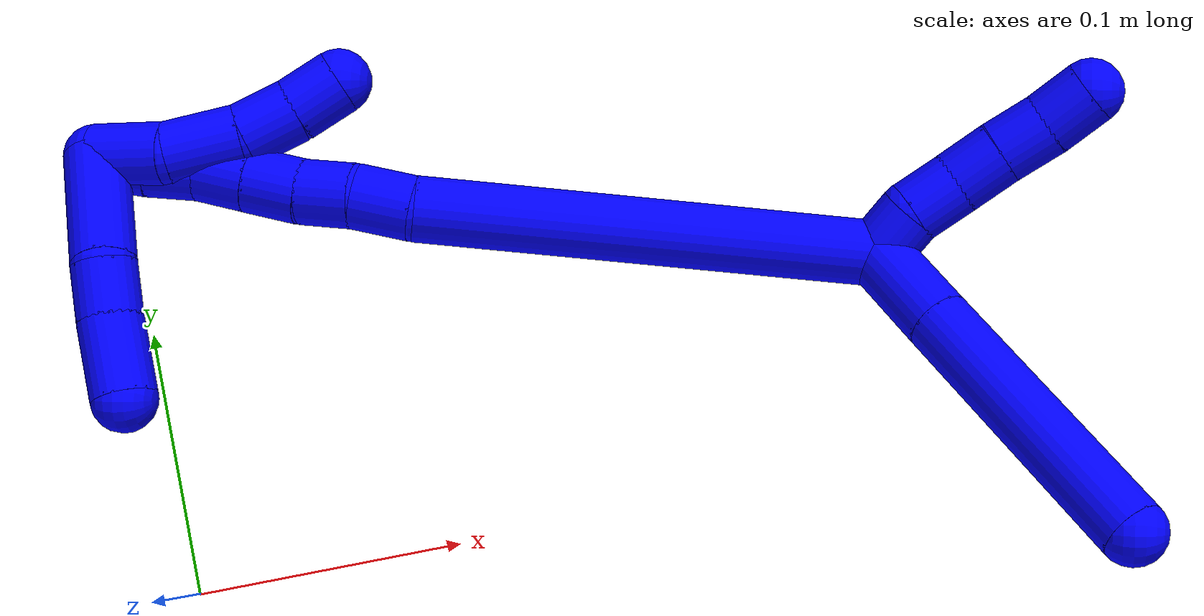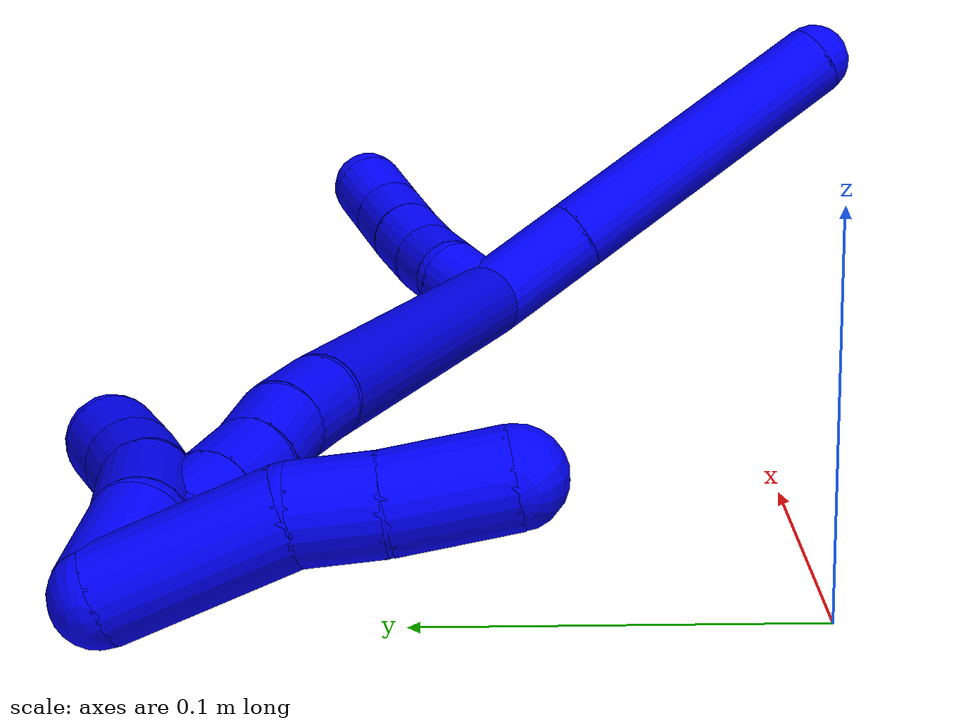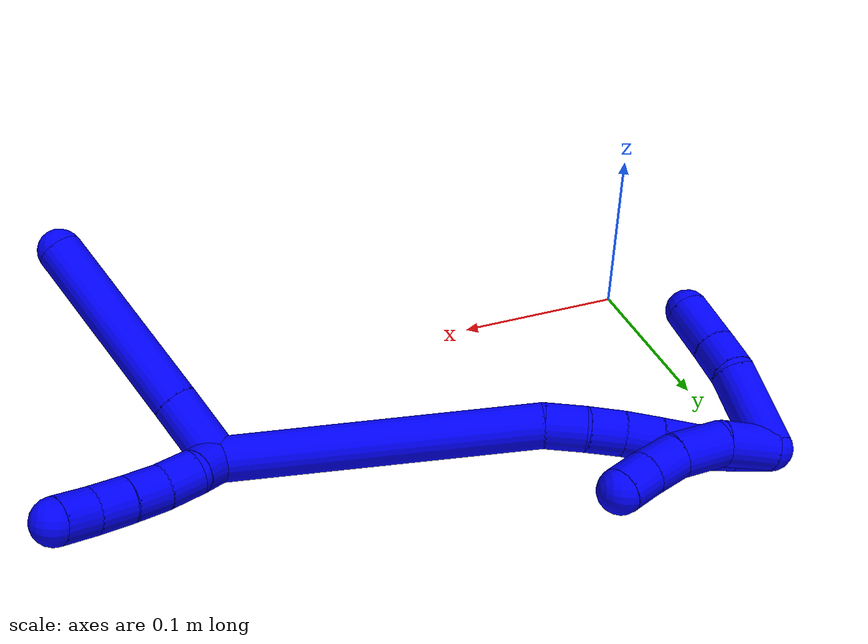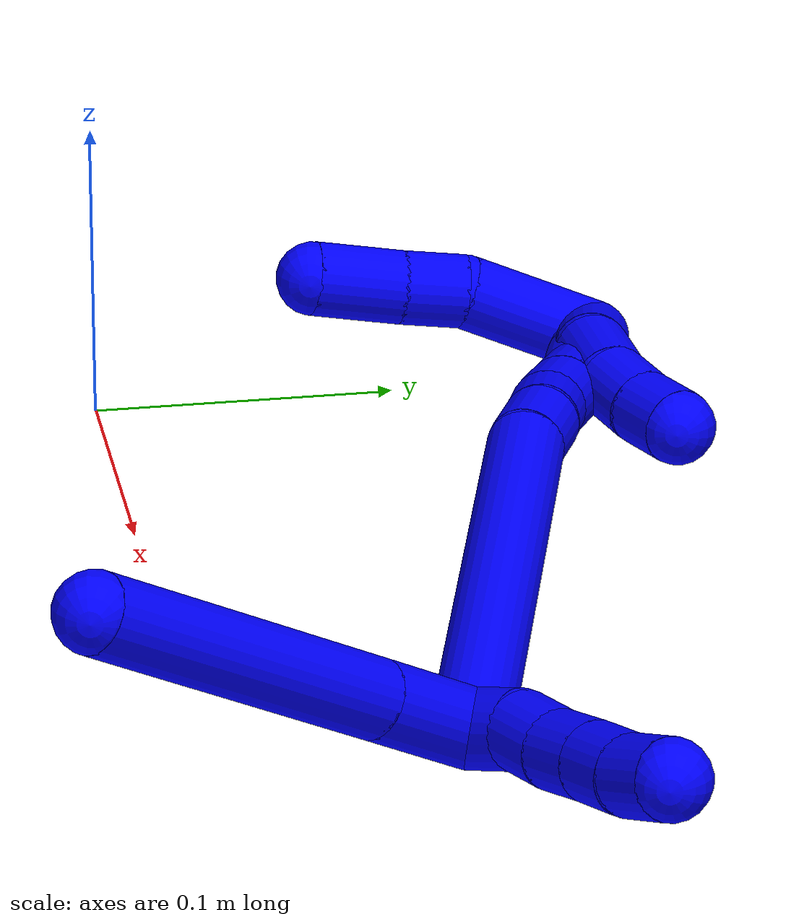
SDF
<sdf version="1.7">
 <world name="default">
  <model name="1">
   <static>0</static>
   <link name="1">
    <collision name="collision-cylinder-e_1_2_8">
     <pose>0.004062 -0.015116 0.012046 0.897941 0.207134 0.100069</pose>
     <geometry><cylinder><radius>0.0125</radius><length>0.039502</length></cylinder></geometry>
     <surface>
      <friction><ode><mu>1.16</mu><mu2>1.16</mu2><slip1>0</slip1><slip2>0</slip2></ode></friction>
      <contact><ode><kp>1e+06</kp><kd>1</kd><max_vel>0</max_vel><min_depth>0.001</min_depth></ode></contact>
     </surface>
    </collision>
    <visual name="visual-cylinder-e_1_2_8">
     <pose>0.004062 -0.015116 0.012046 0.897941 0.207134 0.100069</pose>
     <geometry><cylinder><radius>0.0125</radius><length>0.039502</length></cylinder></geometry>
     <material><ambient>0 0 1 1</ambient></material>
    </visual>
    <collision name="collision-cylinder-e_2_8_6">
     <pose>0.019372 -0.072261 0.058144 0.889868 0.205022 0.098024</pose>
     <geometry><cylinder><radius>0.0125</radius><length>0.110498</length></cylinder></geometry>
     <surface>
      <friction><ode><mu>1.16</mu><mu2>1.16</mu2><slip1>0</slip1><slip2>0</slip2></ode></friction>
      <contact><ode><kp>1e+06</kp><kd>1</kd><max_vel>0</max_vel><min_depth>0.001</min_depth></ode></contact>
     </surface>
    </collision>
    <visual name="visual-cylinder-e_2_8_6">
     <pose>0.019372 -0.072261 0.058144 0.889868 0.205022 0.098024</pose>
     <geometry><cylinder><radius>0.0125</radius><length>0.110498</length></cylinder></geometry>
     <material><ambient>0 0 1 1</ambient></material>
    </visual>
    <collision name="collision-cylinder-e_1_2_9">
     <pose>-0.006732 0.003828 0.006326 -0.544188 -0.738523 0.215131</pose>
     <geometry><cylinder><radius>0.0125</radius><length>0.02</length></cylinder></geometry>
     <surface>
      <friction><ode><mu>1.16</mu><mu2>1.16</mu2><slip1>0</slip1><slip2>0</slip2></ode></friction>
      <contact><ode><kp>1e+06</kp><kd>1</kd><max_vel>0</max_vel><min_depth>0.001</min_depth></ode></contact>
     </surface>
    </collision>
    <visual name="visual-cylinder-e_1_2_9">
     <pose>-0.006732 0.003828 0.006326 -0.544188 -0.738523 0.215131</pose>
     <geometry><cylinder><radius>0.0125</radius><length>0.02</length></cylinder></geometry>
     <material><ambient>0 0 1 1</ambient></material>
    </visual>
    <collision name="collision-cylinder-e_2_9_10">
     <pose>-0.017326 0.011966 0.020809 -0.486059 -0.396526 0.099537</pose>
     <geometry><cylinder><radius>0.0125</radius><length>0.02</length></cylinder></geometry>
     <surface>
      <friction><ode><mu>1.16</mu><mu2>1.16</mu2><slip1>0</slip1><slip2>0</slip2></ode></friction>
      <contact><ode><kp>1e+06</kp><kd>1</kd><max_vel>0</max_vel><min_depth>0.001</min_depth></ode></contact>
     </surface>
    </collision>
    <visual name="visual-cylinder-e_2_9_10">
     <pose>-0.017326 0.011966 0.020809 -0.486059 -0.396526 0.099537</pose>
     <geometry><cylinder><radius>0.0125</radius><length>0.02</length></cylinder></geometry>
     <material><ambient>0 0 1 1</ambient></material>
    </visual>
    <collision name="collision-cylinder-e_3_10_11">
     <pose>-0.025909 0.019639 0.037113 -0.391547 -0.491663 0.099434</pose>
     <geometry><cylinder><radius>0.0125</radius><length>0.02</length></cylinder></geometry>
     <surface>
      <friction><ode><mu>1.16</mu><mu2>1.16</mu2><slip1>0</slip1><slip2>0</slip2></ode></friction>
      <contact><ode><kp>1e+06</kp><kd>1</kd><max_vel>0</max_vel><min_depth>0.001</min_depth></ode></contact>
     </surface>
    </collision>
    <visual name="visual-cylinder-e_3_10_11">
     <pose>-0.025909 0.019639 0.037113 -0.391547 -0.491663 0.099434</pose>
     <geometry><cylinder><radius>0.0125</radius><length>0.02</length></cylinder></geometry>
     <material><ambient>0 0 1 1</ambient></material>
    </visual>
    <collision name="collision-cylinder-e_4_11_12">
     <pose>-0.034953 0.026155 0.05371 -0.357114 -0.446992 0.081997</pose>
     <geometry><cylinder><radius>0.0125</radius><length>0.02</length></cylinder></geometry>
     <surface>
      <friction><ode><mu>1.16</mu><mu2>1.16</mu2><slip1>0</slip1><slip2>0</slip2></ode></friction>
      <contact><ode><kp>1e+06</kp><kd>1</kd><max_vel>0</max_vel><min_depth>0.001</min_depth></ode></contact>
     </surface>
    </collision>
    <visual name="visual-cylinder-e_4_11_12">
     <pose>-0.034953 0.026155 0.05371 -0.357114 -0.446992 0.081997</pose>
     <geometry><cylinder><radius>0.0125</radius><length>0.02</length></cylinder></geometry>
     <material><ambient>0 0 1 1</ambient></material>
    </visual>
    <collision name="collision-cylinder-e_5_12_5">
     <pose>-0.044889 0.031907 0.070015 -0.319512 -0.596033 0.098905</pose>
     <geometry><cylinder><radius>0.0125</radius><length>0.02</length></cylinder></geometry>
     <surface>
      <friction><ode><mu>1.16</mu><mu2>1.16</mu2><slip1>0</slip1><slip2>0</slip2></ode></friction>
      <contact><ode><kp>1e+06</kp><kd>1</kd><max_vel>0</max_vel><min_depth>0.001</min_depth></ode></contact>
     </surface>
    </collision>
    <visual name="visual-cylinder-e_5_12_5">
     <pose>-0.044889 0.031907 0.070015 -0.319512 -0.596033 0.098905</pose>
     <geometry><cylinder><radius>0.0125</radius><length>0.02</length></cylinder></geometry>
     <material><ambient>0 0 1 1</ambient></material>
    </visual>
    <collision name="collision-cylinder-e_1_2_13">
     <pose>-0.017983 -0.011684 -0.084995 3.00498 -0.206609 -1.97499</pose>
     <geometry><cylinder><radius>0.0125</radius><length>0.175318</length></cylinder></geometry>
     <surface>
      <friction><ode><mu>1.16</mu><mu2>1.16</mu2><slip1>0</slip1><slip2>0</slip2></ode></friction>
      <contact><ode><kp>1e+06</kp><kd>1</kd><max_vel>0</max_vel><min_depth>0.001</min_depth></ode></contact>
     </surface>
    </collision>
    <visual name="visual-cylinder-e_1_2_13">
     <pose>-0.017983 -0.011684 -0.084995 3.00498 -0.206609 -1.97499</pose>
     <geometry><cylinder><radius>0.0125</radius><length>0.175318</length></cylinder></geometry>
     <material><ambient>0 0 1 1</ambient></material>
    </visual>
    <collision name="collision-cylinder-e_2_13_14">
     <pose>-0.038239 -0.022722 -0.181036 -3.08314 -0.202713 2.58183</pose>
     <geometry><cylinder><radius>0.0125</radius><length>0.022591</length></cylinder></geometry>
     <surface>
      <friction><ode><mu>1.16</mu><mu2>1.16</mu2><slip1>0</slip1><slip2>0</slip2></ode></friction>
      <contact><ode><kp>1e+06</kp><kd>1</kd><max_vel>0</max_vel><min_depth>0.001</min_depth></ode></contact>
     </surface>
    </collision>
    <visual name="visual-cylinder-e_2_13_14">
     <pose>-0.038239 -0.022722 -0.181036 -3.08314 -0.202713 2.58183</pose>
     <geometry><cylinder><radius>0.0125</radius><length>0.022591</length></cylinder></geometry>
     <material><ambient>0 0 1 1</ambient></material>
    </visual>
    <collision name="collision-cylinder-e_3_14_15">
     <pose>-0.040824 -0.021318 -0.202329 -3.06774 -0.030256 0.777372</pose>
     <geometry><cylinder><radius>0.0125</radius><length>0.020561</length></cylinder></geometry>
     <surface>
      <friction><ode><mu>1.16</mu><mu2>1.16</mu2><slip1>0</slip1><slip2>0</slip2></ode></friction>
      <contact><ode><kp>1e+06</kp><kd>1</kd><max_vel>0</max_vel><min_depth>0.001</min_depth></ode></contact>
     </surface>
    </collision>
    <visual name="visual-cylinder-e_3_14_15">
     <pose>-0.040824 -0.021318 -0.202329 -3.06774 -0.030256 0.777372</pose>
     <geometry><cylinder><radius>0.0125</radius><length>0.020561</length></cylinder></geometry>
     <material><ambient>0 0 1 1</ambient></material>
    </visual>
    <collision name="collision-cylinder-e_4_15_16">
     <pose>-0.042674 -0.019084 -0.222745 -2.99746 -0.148683 1.60202</pose>
     <geometry><cylinder><radius>0.0125</radius><length>0.020778</length></cylinder></geometry>
     <surface>
      <friction><ode><mu>1.16</mu><mu2>1.16</mu2><slip1>0</slip1><slip2>0</slip2></ode></friction>
      <contact><ode><kp>1e+06</kp><kd>1</kd><max_vel>0</max_vel><min_depth>0.001</min_depth></ode></contact>
     </surface>
    </collision>
    <visual name="visual-cylinder-e_4_15_16">
     <pose>-0.042674 -0.019084 -0.222745 -2.99746 -0.148683 1.60202</pose>
     <geometry><cylinder><radius>0.0125</radius><length>0.020778</length></cylinder></geometry>
     <material><ambient>0 0 1 1</ambient></material>
    </visual>
    <collision name="collision-cylinder-e_5_16_17">
     <pose>-0.045691 -0.016077 -0.242782 -2.98768 -0.146862 1.52373</pose>
     <geometry><cylinder><radius>0.0125</radius><length>0.020191</length></cylinder></geometry>
     <surface>
      <friction><ode><mu>1.16</mu><mu2>1.16</mu2><slip1>0</slip1><slip2>0</slip2></ode></friction>
      <contact><ode><kp>1e+06</kp><kd>1</kd><max_vel>0</max_vel><min_depth>0.001</min_depth></ode></contact>
     </surface>
    </collision>
    <visual name="visual-cylinder-e_5_16_17">
     <pose>-0.045691 -0.016077 -0.242782 -2.98768 -0.146862 1.52373</pose>
     <geometry><cylinder><radius>0.0125</radius><length>0.020191</length></cylinder></geometry>
     <material><ambient>0 0 1 1</ambient></material>
    </visual>
    <collision name="collision-cylinder-e_6_17_18">
     <pose>-0.048075 -0.014664 -0.262779 3.13 -0.089294 -2.88347</pose>
     <geometry><cylinder><radius>0.0125</radius><length>0.02034</length></cylinder></geometry>
     <surface>
      <friction><ode><mu>1.16</mu><mu2>1.16</mu2><slip1>0</slip1><slip2>0</slip2></ode></friction>
      <contact><ode><kp>1e+06</kp><kd>1</kd><max_vel>0</max_vel><min_depth>0.001</min_depth></ode></contact>
     </surface>
    </collision>
    <visual name="visual-cylinder-e_6_17_18">
     <pose>-0.048075 -0.014664 -0.262779 3.13 -0.089294 -2.88347</pose>
     <geometry><cylinder><radius>0.0125</radius><length>0.02034</length></cylinder></geometry>
     <material><ambient>0 0 1 1</ambient></material>
    </visual>
    <collision name="collision-cylinder-e_7_18_1">
     <pose>-0.050848 -0.014998 -0.282842 3.11975 -0.185663 -2.90803</pose>
     <geometry><cylinder><radius>0.0125</radius><length>0.020221</length></cylinder></geometry>
     <surface>
      <friction><ode><mu>1.16</mu><mu2>1.16</mu2><slip1>0</slip1><slip2>0</slip2></ode></friction>
      <contact><ode><kp>1e+06</kp><kd>1</kd><max_vel>0</max_vel><min_depth>0.001</min_depth></ode></contact>
     </surface>
    </collision>
    <visual name="visual-cylinder-e_7_18_1">
     <pose>-0.050848 -0.014998 -0.282842 3.11975 -0.185663 -2.90803</pose>
     <geometry><cylinder><radius>0.0125</radius><length>0.020221</length></cylinder></geometry>
     <material><ambient>0 0 1 1</ambient></material>
    </visual>
    <collision name="collision-cylinder-e_1_1_19">
     <pose>-0.053929 -0.01596 -0.278202 0.051087 -0.08301 -0.002122</pose>
     <geometry><cylinder><radius>0.0125</radius><length>0.029288</length></cylinder></geometry>
     <surface>
      <friction><ode><mu>1.16</mu><mu2>1.16</mu2><slip1>0</slip1><slip2>0</slip2></ode></friction>
      <contact><ode><kp>1e+06</kp><kd>1</kd><max_vel>0</max_vel><min_depth>0.001</min_depth></ode></contact>
     </surface>
    </collision>
    <visual name="visual-cylinder-e_1_1_19">
     <pose>-0.053929 -0.01596 -0.278202 0.051087 -0.08301 -0.002122</pose>
     <geometry><cylinder><radius>0.0125</radius><length>0.029288</length></cylinder></geometry>
     <material><ambient>0 0 1 1</ambient></material>
    </visual>
    <collision name="collision-cylinder-e_2_19_20">
     <pose>-0.056555 -0.01266 -0.249801 -0.284639 -0.097701 0.01401</pose>
     <geometry><cylinder><radius>0.0125</radius><length>0.028952</length></cylinder></geometry>
     <surface>
      <friction><ode><mu>1.16</mu><mu2>1.16</mu2><slip1>0</slip1><slip2>0</slip2></ode></friction>
      <contact><ode><kp>1e+06</kp><kd>1</kd><max_vel>0</max_vel><min_depth>0.001</min_depth></ode></contact>
     </surface>
    </collision>
    <visual name="visual-cylinder-e_2_19_20">
     <pose>-0.056555 -0.01266 -0.249801 -0.284639 -0.097701 0.01401</pose>
     <geometry><cylinder><radius>0.0125</radius><length>0.028952</length></cylinder></geometry>
     <material><ambient>0 0 1 1</ambient></material>
    </visual>
    <collision name="collision-cylinder-e_3_20_21">
     <pose>-0.060467 -0.003559 -0.226677 -0.498023 -0.231974 0.059237</pose>
     <geometry><cylinder><radius>0.0125</radius><length>0.021746</length></cylinder></geometry>
     <surface>
      <friction><ode><mu>1.16</mu><mu2>1.16</mu2><slip1>0</slip1><slip2>0</slip2></ode></friction>
      <contact><ode><kp>1e+06</kp><kd>1</kd><max_vel>0</max_vel><min_depth>0.001</min_depth></ode></contact>
     </surface>
    </collision>
    <visual name="visual-cylinder-e_3_20_21">
     <pose>-0.060467 -0.003559 -0.226677 -0.498023 -0.231974 0.059237</pose>
     <geometry><cylinder><radius>0.0125</radius><length>0.021746</length></cylinder></geometry>
     <material><ambient>0 0 1 1</ambient></material>
    </visual>
    <collision name="collision-cylinder-e_4_21_4">
     <pose>-0.066321 0.00623 -0.209228 -0.52615 -0.341881 0.092915</pose>
     <geometry><cylinder><radius>0.0125</radius><length>0.020015</length></cylinder></geometry>
     <surface>
      <friction><ode><mu>1.16</mu><mu2>1.16</mu2><slip1>0</slip1><slip2>0</slip2></ode></friction>
      <contact><ode><kp>1e+06</kp><kd>1</kd><max_vel>0</max_vel><min_depth>0.001</min_depth></ode></contact>
     </surface>
    </collision>
    <visual name="visual-cylinder-e_4_21_4">
     <pose>-0.066321 0.00623 -0.209228 -0.52615 -0.341881 0.092915</pose>
     <geometry><cylinder><radius>0.0125</radius><length>0.020015</length></cylinder></geometry>
     <material><ambient>0 0 1 1</ambient></material>
    </visual>
    <collision name="collision-cylinder-e_1_1_22">
     <pose>-0.043586 -0.036542 -0.286826 1.29872 0.39105 0.298489</pose>
     <geometry><cylinder><radius>0.0125</radius><length>0.047898</length></cylinder></geometry>
     <surface>
      <friction><ode><mu>1.16</mu><mu2>1.16</mu2><slip1>0</slip1><slip2>0</slip2></ode></friction>
      <contact><ode><kp>1e+06</kp><kd>1</kd><max_vel>0</max_vel><min_depth>0.001</min_depth></ode></contact>
     </surface>
    </collision>
    <visual name="visual-cylinder-e_1_1_22">
     <pose>-0.043586 -0.036542 -0.286826 1.29872 0.39105 0.298489</pose>
     <geometry><cylinder><radius>0.0125</radius><length>0.047898</length></cylinder></geometry>
     <material><ambient>0 0 1 1</ambient></material>
    </visual>
    <collision name="collision-cylinder-e_2_22_23">
     <pose>-0.027656 -0.065926 -0.278656 1.3019 0.683073 0.528842</pose>
     <geometry><cylinder><radius>0.0125</radius><length>0.021551</length></cylinder></geometry>
     <surface>
      <friction><ode><mu>1.16</mu><mu2>1.16</mu2><slip1>0</slip1><slip2>0</slip2></ode></friction>
      <contact><ode><kp>1e+06</kp><kd>1</kd><max_vel>0</max_vel><min_depth>0.001</min_depth></ode></contact>
     </surface>
    </collision>
    <visual name="visual-cylinder-e_2_22_23">
     <pose>-0.027656 -0.065926 -0.278656 1.3019 0.683073 0.528842</pose>
     <geometry><cylinder><radius>0.0125</radius><length>0.021551</length></cylinder></geometry>
     <material><ambient>0 0 1 1</ambient></material>
    </visual>
    <collision name="collision-cylinder-e_3_23_3">
     <pose>-0.012073 -0.085724 -0.272149 1.22076 0.612501 0.435343</pose>
     <geometry><cylinder><radius>0.0125</radius><length>0.030551</length></cylinder></geometry>
     <surface>
      <friction><ode><mu>1.16</mu><mu2>1.16</mu2><slip1>0</slip1><slip2>0</slip2></ode></friction>
      <contact><ode><kp>1e+06</kp><kd>1</kd><max_vel>0</max_vel><min_depth>0.001</min_depth></ode></contact>
     </surface>
    </collision>
    <visual name="visual-cylinder-e_3_23_3">
     <pose>-0.012073 -0.085724 -0.272149 1.22076 0.612501 0.435343</pose>
     <geometry><cylinder><radius>0.0125</radius><length>0.030551</length></cylinder></geometry>
     <material><ambient>0 0 1 1</ambient></material>
    </visual>
    <collision name="collision-sphere-3">
     <pose>-0.003291 -0.097465 -0.267863 0 -0 0</pose>
     <geometry><sphere><radius>0.0125</radius></sphere></geometry>
     <surface>
      <friction><ode><mu>1.16</mu><mu2>1.16</mu2><slip1>0</slip1><slip2>0</slip2></ode></friction>
      <contact><ode><kp>1e+06</kp><kd>1</kd><max_vel>0</max_vel><min_depth>0.001</min_depth></ode></contact>
     </surface>
    </collision>
    <visual name="visual-sphere-3">
     <pose>-0.003291 -0.097465 -0.267863 0 -0 0</pose>
     <geometry><sphere><radius>0.0125</radius></sphere></geometry>
     <material><ambient>0 0 1 1</ambient></material>
    </visual>
    <collision name="collision-sphere-23">
     <pose>-0.020855 -0.073983 -0.276436 0 -0 0</pose>
     <geometry><sphere><radius>0.0125</radius></sphere></geometry>
     <surface>
      <friction><ode><mu>1.16</mu><mu2>1.16</mu2><slip1>0</slip1><slip2>0</slip2></ode></friction>
      <contact><ode><kp>1e+06</kp><kd>1</kd><max_vel>0</max_vel><min_depth>0.001</min_depth></ode></contact>
     </surface>
    </collision>
    <visual name="visual-sphere-23">
     <pose>-0.020855 -0.073983 -0.276436 0 -0 0</pose>
     <geometry><sphere><radius>0.0125</radius></sphere></geometry>
     <material><ambient>0 0 1 1</ambient></material>
    </visual>
    <collision name="collision-sphere-22">
     <pose>-0.034458 -0.057868 -0.280876 0 -0 0</pose>
     <geometry><sphere><radius>0.0125</radius></sphere></geometry>
     <surface>
      <friction><ode><mu>1.16</mu><mu2>1.16</mu2><slip1>0</slip1><slip2>0</slip2></ode></friction>
      <contact><ode><kp>1e+06</kp><kd>1</kd><max_vel>0</max_vel><min_depth>0.001</min_depth></ode></contact>
     </surface>
    </collision>
    <visual name="visual-sphere-22">
     <pose>-0.034458 -0.057868 -0.280876 0 -0 0</pose>
     <geometry><sphere><radius>0.0125</radius></sphere></geometry>
     <material><ambient>0 0 1 1</ambient></material>
    </visual>
    <collision name="collision-sphere-4">
     <pose>-0.069676 0.010965 -0.201075 0 -0 0</pose>
     <geometry><sphere><radius>0.0125</radius></sphere></geometry>
     <surface>
      <friction><ode><mu>1.16</mu><mu2>1.16</mu2><slip1>0</slip1><slip2>0</slip2></ode></friction>
      <contact><ode><kp>1e+06</kp><kd>1</kd><max_vel>0</max_vel><min_depth>0.001</min_depth></ode></contact>
     </surface>
    </collision>
    <visual name="visual-sphere-4">
     <pose>-0.069676 0.010965 -0.201075 0 -0 0</pose>
     <geometry><sphere><radius>0.0125</radius></sphere></geometry>
     <material><ambient>0 0 1 1</ambient></material>
    </visual>
    <collision name="collision-sphere-21">
     <pose>-0.062966 0.001495 -0.217381 0 -0 0</pose>
     <geometry><sphere><radius>0.0125</radius></sphere></geometry>
     <surface>
      <friction><ode><mu>1.16</mu><mu2>1.16</mu2><slip1>0</slip1><slip2>0</slip2></ode></friction>
      <contact><ode><kp>1e+06</kp><kd>1</kd><max_vel>0</max_vel><min_depth>0.001</min_depth></ode></contact>
     </surface>
    </collision>
    <visual name="visual-sphere-21">
     <pose>-0.062966 0.001495 -0.217381 0 -0 0</pose>
     <geometry><sphere><radius>0.0125</radius></sphere></geometry>
     <material><ambient>0 0 1 1</ambient></material>
    </visual>
    <collision name="collision-sphere-20">
     <pose>-0.057967 -0.008614 -0.235973 0 -0 0</pose>
     <geometry><sphere><radius>0.0125</radius></sphere></geometry>
     <surface>
      <friction><ode><mu>1.16</mu><mu2>1.16</mu2><slip1>0</slip1><slip2>0</slip2></ode></friction>
      <contact><ode><kp>1e+06</kp><kd>1</kd><max_vel>0</max_vel><min_depth>0.001</min_depth></ode></contact>
     </surface>
    </collision>
    <visual name="visual-sphere-20">
     <pose>-0.057967 -0.008614 -0.235973 0 -0 0</pose>
     <geometry><sphere><radius>0.0125</radius></sphere></geometry>
     <material><ambient>0 0 1 1</ambient></material>
    </visual>
    <collision name="collision-sphere-11">
     <pose>-0.03063 0.023003 0.045261 0 -0 0</pose>
     <geometry><sphere><radius>0.0125</radius></sphere></geometry>
     <surface>
      <friction><ode><mu>1.16</mu><mu2>1.16</mu2><slip1>0</slip1><slip2>0</slip2></ode></friction>
      <contact><ode><kp>1e+06</kp><kd>1</kd><max_vel>0</max_vel><min_depth>0.001</min_depth></ode></contact>
     </surface>
    </collision>
    <visual name="visual-sphere-11">
     <pose>-0.03063 0.023003 0.045261 0 -0 0</pose>
     <geometry><sphere><radius>0.0125</radius></sphere></geometry>
     <material><ambient>0 0 1 1</ambient></material>
    </visual>
    <collision name="collision-sphere-10">
     <pose>-0.021188 0.016275 0.028964 0 -0 0</pose>
     <geometry><sphere><radius>0.0125</radius></sphere></geometry>
     <surface>
      <friction><ode><mu>1.16</mu><mu2>1.16</mu2><slip1>0</slip1><slip2>0</slip2></ode></friction>
      <contact><ode><kp>1e+06</kp><kd>1</kd><max_vel>0</max_vel><min_depth>0.001</min_depth></ode></contact>
     </surface>
    </collision>
    <visual name="visual-sphere-10">
     <pose>-0.021188 0.016275 0.028964 0 -0 0</pose>
     <geometry><sphere><radius>0.0125</radius></sphere></geometry>
     <material><ambient>0 0 1 1</ambient></material>
    </visual>
    <collision name="collision-sphere-6">
     <pose>0.03062 -0.11429 0.092196 0 -0 0</pose>
     <geometry><sphere><radius>0.0125</radius></sphere></geometry>
     <surface>
      <friction><ode><mu>1.16</mu><mu2>1.16</mu2><slip1>0</slip1><slip2>0</slip2></ode></friction>
      <contact><ode><kp>1e+06</kp><kd>1</kd><max_vel>0</max_vel><min_depth>0.001</min_depth></ode></contact>
     </surface>
    </collision>
    <visual name="visual-sphere-6">
     <pose>0.03062 -0.11429 0.092196 0 -0 0</pose>
     <geometry><sphere><radius>0.0125</radius></sphere></geometry>
     <material><ambient>0 0 1 1</ambient></material>
    </visual>
    <collision name="collision-sphere-9">
     <pose>-0.013464 0.007657 0.012653 0 -0 0</pose>
     <geometry><sphere><radius>0.0125</radius></sphere></geometry>
     <surface>
      <friction><ode><mu>1.16</mu><mu2>1.16</mu2><slip1>0</slip1><slip2>0</slip2></ode></friction>
      <contact><ode><kp>1e+06</kp><kd>1</kd><max_vel>0</max_vel><min_depth>0.001</min_depth></ode></contact>
     </surface>
    </collision>
    <visual name="visual-sphere-9">
     <pose>-0.013464 0.007657 0.012653 0 -0 0</pose>
     <geometry><sphere><radius>0.0125</radius></sphere></geometry>
     <material><ambient>0 0 1 1</ambient></material>
    </visual>
    <collision name="collision-sphere-2">
     <geometry><sphere><radius>0.0125</radius></sphere></geometry>
     <surface>
      <friction><ode><mu>1.16</mu><mu2>1.16</mu2><slip1>0</slip1><slip2>0</slip2></ode></friction>
      <contact><ode><kp>1e+06</kp><kd>1</kd><max_vel>0</max_vel><min_depth>0.001</min_depth></ode></contact>
     </surface>
    </collision>
    <visual name="visual-sphere-2">
     <geometry><sphere><radius>0.0125</radius></sphere></geometry>
     <material><ambient>0 0 1 1</ambient></material>
    </visual>
    <collision name="collision-sphere-19">
     <pose>-0.055143 -0.016705 -0.263628 0 -0 0</pose>
     <geometry><sphere><radius>0.0125</radius></sphere></geometry>
     <surface>
      <friction><ode><mu>1.16</mu><mu2>1.16</mu2><slip1>0</slip1><slip2>0</slip2></ode></friction>
      <contact><ode><kp>1e+06</kp><kd>1</kd><max_vel>0</max_vel><min_depth>0.001</min_depth></ode></contact>
     </surface>
    </collision>
    <visual name="visual-sphere-19">
     <pose>-0.055143 -0.016705 -0.263628 0 -0 0</pose>
     <geometry><sphere><radius>0.0125</radius></sphere></geometry>
     <material><ambient>0 0 1 1</ambient></material>
    </visual>
    <collision name="collision-sphere-8">
     <pose>0.008124 -0.030232 0.024092 0 -0 0</pose>
     <geometry><sphere><radius>0.0125</radius></sphere></geometry>
     <surface>
      <friction><ode><mu>1.16</mu><mu2>1.16</mu2><slip1>0</slip1><slip2>0</slip2></ode></friction>
      <contact><ode><kp>1e+06</kp><kd>1</kd><max_vel>0</max_vel><min_depth>0.001</min_depth></ode></contact>
     </surface>
    </collision>
    <visual name="visual-sphere-8">
     <pose>0.008124 -0.030232 0.024092 0 -0 0</pose>
     <geometry><sphere><radius>0.0125</radius></sphere></geometry>
     <material><ambient>0 0 1 1</ambient></material>
    </visual>
    <collision name="collision-sphere-12">
     <pose>-0.039275 0.029308 0.062158 0 -0 0</pose>
     <geometry><sphere><radius>0.0125</radius></sphere></geometry>
     <surface>
      <friction><ode><mu>1.16</mu><mu2>1.16</mu2><slip1>0</slip1><slip2>0</slip2></ode></friction>
      <contact><ode><kp>1e+06</kp><kd>1</kd><max_vel>0</max_vel><min_depth>0.001</min_depth></ode></contact>
     </surface>
    </collision>
    <visual name="visual-sphere-12">
     <pose>-0.039275 0.029308 0.062158 0 -0 0</pose>
     <geometry><sphere><radius>0.0125</radius></sphere></geometry>
     <material><ambient>0 0 1 1</ambient></material>
    </visual>
    <collision name="collision-sphere-5">
     <pose>-0.050502 0.034506 0.077872 0 -0 0</pose>
     <geometry><sphere><radius>0.0125</radius></sphere></geometry>
     <surface>
      <friction><ode><mu>1.16</mu><mu2>1.16</mu2><slip1>0</slip1><slip2>0</slip2></ode></friction>
      <contact><ode><kp>1e+06</kp><kd>1</kd><max_vel>0</max_vel><min_depth>0.001</min_depth></ode></contact>
     </surface>
    </collision>
    <visual name="visual-sphere-5">
     <pose>-0.050502 0.034506 0.077872 0 -0 0</pose>
     <geometry><sphere><radius>0.0125</radius></sphere></geometry>
     <material><ambient>0 0 1 1</ambient></material>
    </visual>
    <collision name="collision-sphere-13">
     <pose>-0.035965 -0.023369 -0.169991 0 -0 0</pose>
     <geometry><sphere><radius>0.0125</radius></sphere></geometry>
     <surface>
      <friction><ode><mu>1.16</mu><mu2>1.16</mu2><slip1>0</slip1><slip2>0</slip2></ode></friction>
      <contact><ode><kp>1e+06</kp><kd>1</kd><max_vel>0</max_vel><min_depth>0.001</min_depth></ode></contact>
     </surface>
    </collision>
    <visual name="visual-sphere-13">
     <pose>-0.035965 -0.023369 -0.169991 0 -0 0</pose>
     <geometry><sphere><radius>0.0125</radius></sphere></geometry>
     <material><ambient>0 0 1 1</ambient></material>
    </visual>
    <collision name="collision-sphere-14">
     <pose>-0.040513 -0.022076 -0.192082 0 -0 0</pose>
     <geometry><sphere><radius>0.0125</radius></sphere></geometry>
     <surface>
      <friction><ode><mu>1.16</mu><mu2>1.16</mu2><slip1>0</slip1><slip2>0</slip2></ode></friction>
      <contact><ode><kp>1e+06</kp><kd>1</kd><max_vel>0</max_vel><min_depth>0.001</min_depth></ode></contact>
     </surface>
    </collision>
    <visual name="visual-sphere-14">
     <pose>-0.040513 -0.022076 -0.192082 0 -0 0</pose>
     <geometry><sphere><radius>0.0125</radius></sphere></geometry>
     <material><ambient>0 0 1 1</ambient></material>
    </visual>
    <collision name="collision-sphere-15">
     <pose>-0.041135 -0.02056 -0.212577 0 -0 0</pose>
     <geometry><sphere><radius>0.0125</radius></sphere></geometry>
     <surface>
      <friction><ode><mu>1.16</mu><mu2>1.16</mu2><slip1>0</slip1><slip2>0</slip2></ode></friction>
      <contact><ode><kp>1e+06</kp><kd>1</kd><max_vel>0</max_vel><min_depth>0.001</min_depth></ode></contact>
     </surface>
    </collision>
    <visual name="visual-sphere-15">
     <pose>-0.041135 -0.02056 -0.212577 0 -0 0</pose>
     <geometry><sphere><radius>0.0125</radius></sphere></geometry>
     <material><ambient>0 0 1 1</ambient></material>
    </visual>
    <collision name="collision-sphere-16">
     <pose>-0.044213 -0.017608 -0.232913 0 -0 0</pose>
     <geometry><sphere><radius>0.0125</radius></sphere></geometry>
     <surface>
      <friction><ode><mu>1.16</mu><mu2>1.16</mu2><slip1>0</slip1><slip2>0</slip2></ode></friction>
      <contact><ode><kp>1e+06</kp><kd>1</kd><max_vel>0</max_vel><min_depth>0.001</min_depth></ode></contact>
     </surface>
    </collision>
    <visual name="visual-sphere-16">
     <pose>-0.044213 -0.017608 -0.232913 0 -0 0</pose>
     <geometry><sphere><radius>0.0125</radius></sphere></geometry>
     <material><ambient>0 0 1 1</ambient></material>
    </visual>
    <collision name="collision-sphere-17">
     <pose>-0.047168 -0.014546 -0.252651 0 -0 0</pose>
     <geometry><sphere><radius>0.0125</radius></sphere></geometry>
     <surface>
      <friction><ode><mu>1.16</mu><mu2>1.16</mu2><slip1>0</slip1><slip2>0</slip2></ode></friction>
      <contact><ode><kp>1e+06</kp><kd>1</kd><max_vel>0</max_vel><min_depth>0.001</min_depth></ode></contact>
     </surface>
    </collision>
    <visual name="visual-sphere-17">
     <pose>-0.047168 -0.014546 -0.252651 0 -0 0</pose>
     <geometry><sphere><radius>0.0125</radius></sphere></geometry>
     <material><ambient>0 0 1 1</ambient></material>
    </visual>
    <collision name="collision-sphere-18">
     <pose>-0.048982 -0.014781 -0.272908 0 -0 0</pose>
     <geometry><sphere><radius>0.0125</radius></sphere></geometry>
     <surface>
      <friction><ode><mu>1.16</mu><mu2>1.16</mu2><slip1>0</slip1><slip2>0</slip2></ode></friction>
      <contact><ode><kp>1e+06</kp><kd>1</kd><max_vel>0</max_vel><min_depth>0.001</min_depth></ode></contact>
     </surface>
    </collision>
    <visual name="visual-sphere-18">
     <pose>-0.048982 -0.014781 -0.272908 0 -0 0</pose>
     <geometry><sphere><radius>0.0125</radius></sphere></geometry>
     <material><ambient>0 0 1 1</ambient></material>
    </visual>
    <collision name="collision-sphere-1">
     <pose>-0.052714 -0.015215 -0.292776 0 -0 0</pose>
     <geometry><sphere><radius>0.0125</radius></sphere></geometry>
     <surface>
      <friction><ode><mu>1.16</mu><mu2>1.16</mu2><slip1>0</slip1><slip2>0</slip2></ode></friction>
      <contact><ode><kp>1e+06</kp><kd>1</kd><max_vel>0</max_vel><min_depth>0.001</min_depth></ode></contact>
     </surface>
    </collision>
    <visual name="visual-sphere-1">
     <pose>-0.052714 -0.015215 -0.292776 0 -0 0</pose>
     <geometry><sphere><radius>0.0125</radius></sphere></geometry>
     <material><ambient>0 0 1 1</ambient></material>
    </visual>
    <inertial>
     <pose>-0.023837 -0.023482 -0.114187 0 -0 0</pose>
     <mass>0.75</mass>
     <inertia>
      <ixx>-0.000421</ixx>
      <ixy>0</ixy>
      <ixz>0</ixz>
      <iyy>-0.000105</iyy>
      <iyz>0</iyz>
      <izz>0.00023</izz>
     </inertia>
    </inertial>
   </link>
   <pose>0.275422 0.077309 0.011495 -1.34565 0.764223 -1.63959</pose>
  </model>
 </world>
</sdf>
